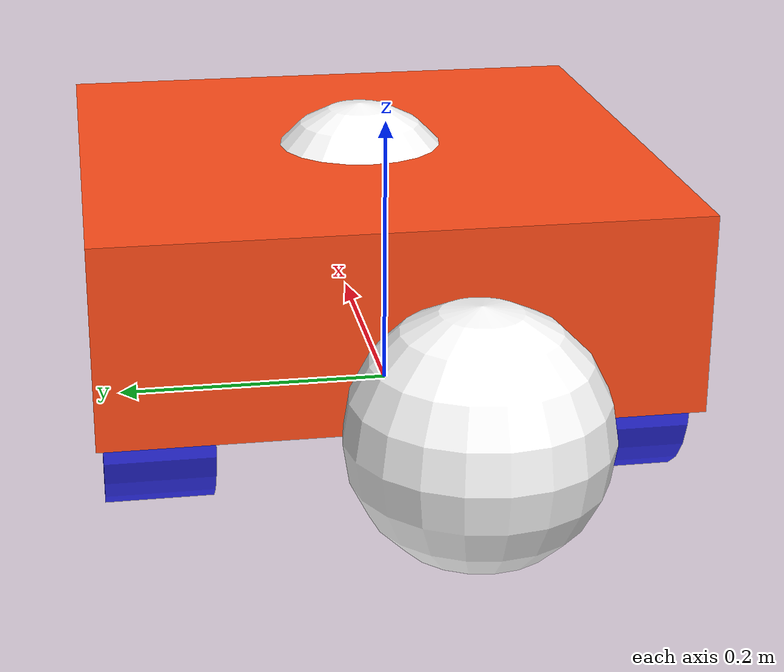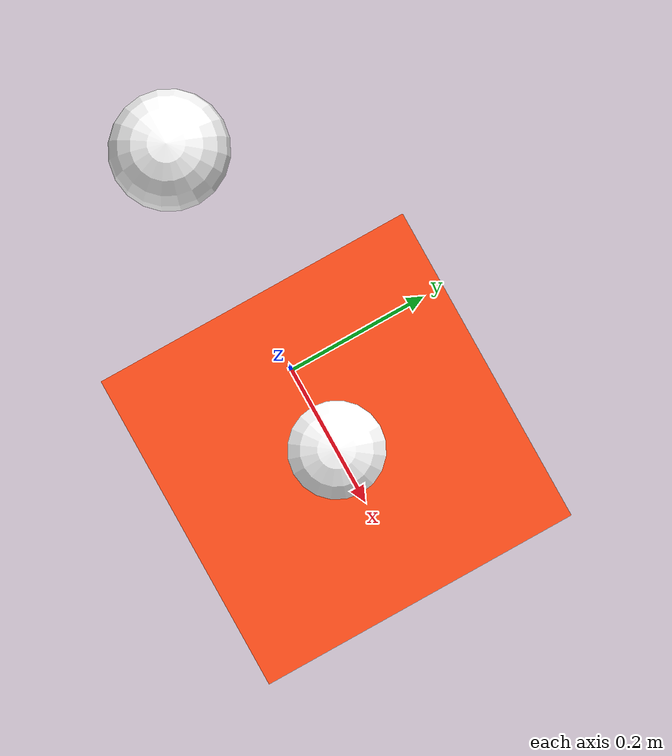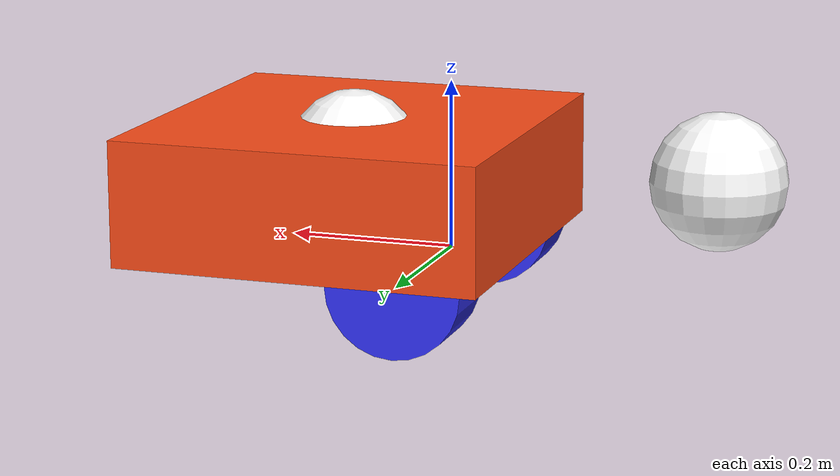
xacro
<?xml version="1.0"?>
<robot xmlns:xacro="http://www.ros.org/wiki/xacro">
    <xacro:include filename="inertial_macros.xacro"/>

    <xacro:property name="chassis_length" value="0.444"/>
    <xacro:property name="chassis_width" value="0.444"/>
    <xacro:property name="chassis_height" value="0.152"/>
    <xacro:property name="chassis_mass" value="1.0"/>
    <xacro:property name="wheel_radius" value="0.076"/>
    <xacro:property name="wheel_thickness" value="0.076"/>
    <xacro:property name="wheel_mass" value="0.05"/>
    <xacro:property name="wheel_offset_x" value="0.226"/>
    <xacro:property name="wheel_offset_y" value="0.1485"/>
    <xacro:property name="wheel_offset_z" value="0.01"/>

    <xacro:property name="caster_wheel_radius" value="0.08"/>
    <xacro:property name="caster_wheel_mass" value="0.01"/>
    <xacro:property name="caster_wheel_offset_x" value="0.075"/>
    <xacro:property name="caster_wheel_offset_z" value="${0.101 - 0.08 + 0.08}"/>
<!-- need to be check the above -->

    <!-- robot apearence -->
    <material name="white">
        <color rgba="1 1 1 1" />
    </material>

    <material name="orange">
        <color rgba="1 0.3 0.1 1"/>
    </material>

    <material name="blue">
        <color rgba="0.2 0.2 1 1"/>
    </material>

    <material name="black">
        <color rgba="0 0 0 1"/>
    </material>

    <material name="red">
        <color rgba="1 0 0 1"/>
    </material>

 <!-- BASE LINK -->
    <link name="base_link">
    </link>
<!-- BASE_FOOTPRINT LINK -->
    <joint name="base_footprint_joint" type="fixed">
        <parent link="base_link"/>
        <child link="base_footprint"/>
        <origin xyz="0 0 0" rpy="0 0 0"/>
    </joint>

    <link name="base_footprint">
    </link>
 <!-- CHASSIS LINK -->
    <joint name="chassis_joint" type="fixed">
        <parent link="base_link"/>
        <child link="chassis"/>
        <origin xyz="-0.1 0 0"/> <!-- here the origin is set just behind the mid of chessi-->
    </joint>

    <link name="chassis">
        <visual>
            <origin xyz="0.22 0 0.075"/>
            <geometry>
                <box size="0.44 0.44 0.15"/>
            </geometry>
            <material name="orange"/>
        </visual>
        <collision>
            <origin xyz="0.22 0 0.075"/>
            <geometry>
                <box size="0.44 0.44 0.15"/>
            </geometry>
        </collision>
        <xacro:inertial_box mass="0.5" x="0.44" y="0.44" z="0.15">
             <origin xyz="0.22 0 0.075" rpy="0 0 0"/>
        </xacro:inertial_box>
    </link>

    <gazebo reference="chassis">
        <material>Gazebo/Orange</material>
    </gazebo>

    <!-- LEFT WHEEL LINK -->
    <joint name="left_wheel_joint" type="continuous">
        <parent link="base_link"/>
        <child link="left_wheel"/>
        <origin xyz="0 0.175 0" rpy="-${pi/2} 0 0" />
        <axis xyz="0 0 1"/>
    </joint>

    <link name="left_wheel">
        <visual>
            <geometry>
                <cylinder radius="0.08" length="0.08"/>
            </geometry>

            <material name="blue"/>
        </visual>
        <collision>
            <geometry>
                <sphere radius="0.08"/>
            </geometry>
        </collision>
        <xacro:inertial_cylinder mass="0.1" length="0.08" radius="0.08">
            <origin xyz="0 0 0" rpy="0 0 0"/>
        </xacro:inertial_cylinder>
    </link>

    <gazebo reference="left_wheel">
        <material>Gazebo/Blue</material>
    </gazebo>

    <!-- RIGHT WHEEL LINK -->

    <joint name="right_wheel_joint" type="continuous">
        <parent link="base_link"/>
        <child link="right_wheel"/>
        <origin xyz="0 -0.175 0" rpy="${pi/2} 0 0" />
        <axis xyz="0 0 -1"/>
    </joint>

    <link name="right_wheel">
        <visual>
            <geometry>
                <cylinder radius="0.08" length="0.08"/>
            </geometry>
            <material name="blue"/>
        </visual>
        <collision>
            <geometry>
                <sphere radius="0.08"/>
            </geometry>
        </collision>
        <xacro:inertial_cylinder mass="0.1" length="0.08" radius="0.08">
            <origin xyz="0 0 0" rpy="0 0 0"/>
        </xacro:inertial_cylinder>
    </link>

    <gazebo reference="right_wheel">
        <material>Gazebo/Blue</material>
    </gazebo>

    <!-- CASTER WHEEL 1 LINK -->

    <joint name="caster_wheel_joint_1" type="fixed">
        <parent link="chassis"/>
        <child link="caster_wheel_1"/>
        <origin xyz="0.22225 0 0.1016"/>
    </joint>

    <link name="caster_wheel_1">
        <visual>
            <geometry>
                <sphere radius="0.08"/>
            </geometry>
            <material name="white"/>
        </visual>
        <collision>
            <geometry>
                <sphere radius="0.08"/>
            </geometry>
        </collision>
            <xacro:inertial_sphere mass="0.01" radius="0.08">
            <origin xyz="0 0 0" rpy="0 0 0"/>
        </xacro:inertial_sphere>
    </link>

    <gazebo reference="caster_wheel_1">
        <material>Gazebo/White</material>
        <mu1 value="0.001"/>
        <mu2 value="0.001"/>
    </gazebo>

    <!-- CASTER WHEEL 2 LINK -->

    <joint name="caster_wheel_joint_2" type="fixed">
        <parent link="chassis"/>
        <child link="caster_wheel_2"/>
        <origin xyz="-0.22175 0 0.1016"/>
    </joint>

    <link name="caster_wheel_2">
        <visual>
            <geometry>
                <sphere radius="0.08"/>
            </geometry>
            <material name="white"/>
        </visual>
        <collision>
            <geometry>
                <sphere radius="0.08"/>
            </geometry>
        </collision>
            <xacro:inertial_sphere mass="0.01" radius="0.08">
            <origin xyz="0 0 0" rpy="0 0 0"/>
        </xacro:inertial_sphere>
    </link>

    <gazebo reference="caster_wheel_2">
        <material>Gazebo/White</material>
        <mu1 value="0.001"/>
        <mu2 value="0.001"/>
    </gazebo>

</robot>
